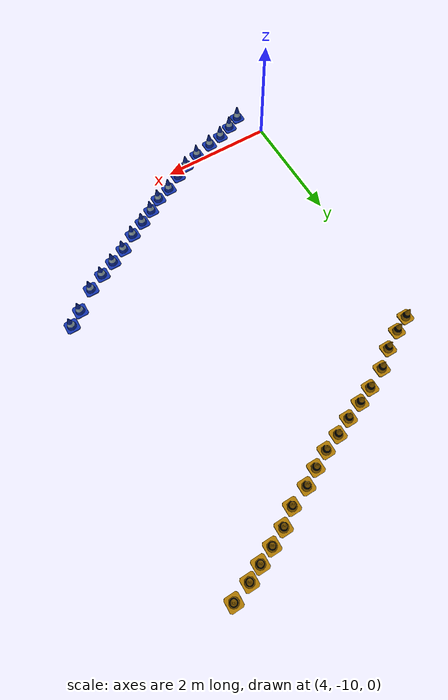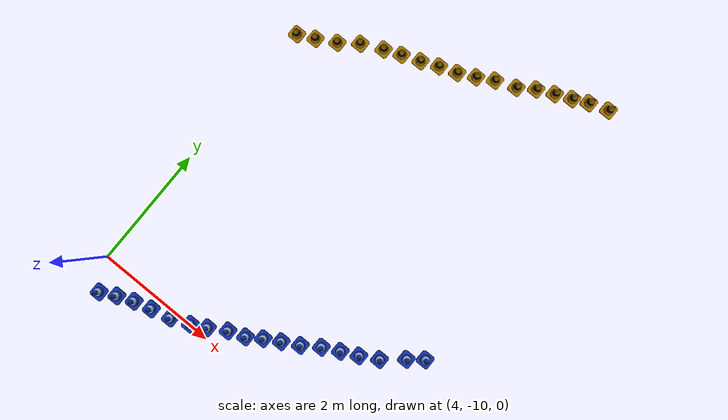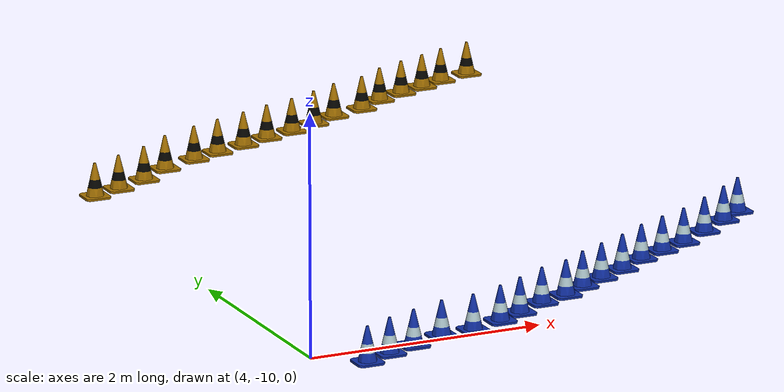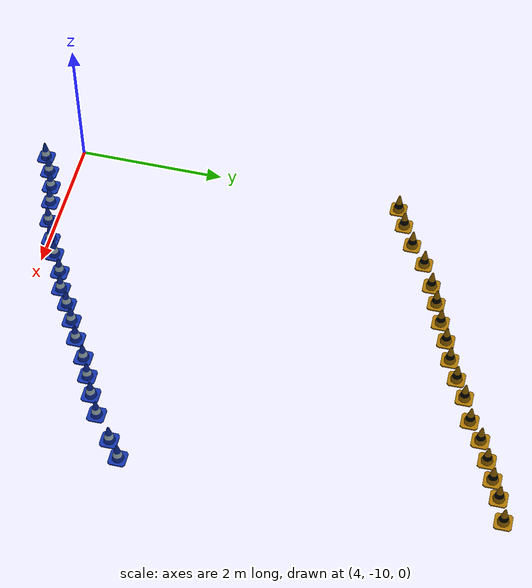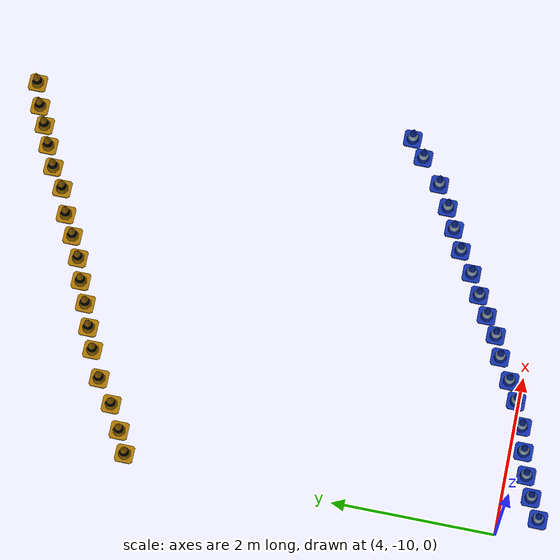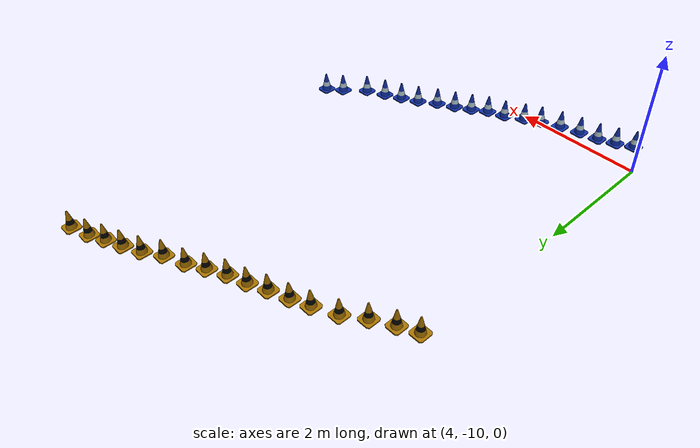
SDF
<sdf version="1.6">
 <model name="small_track">
  <link name="link_0_clone_0_clone_clone_clone_115">
   <pose>8.59347 -3.31553 0.083534 0.001019 -0.000437 -0.000128</pose>
   <visual name="visual">
    <geometry><mesh><uri>model://eufs_description/meshes/cone_yellow.dae</uri></mesh></geometry>
    <material><shader type="pixel"/></material>
   </visual>
  </link>
  <link name="link_0_clone_0_clone_clone_clone_116">
   <pose>8.28638 -3.41764 0.083534 0.001019 -0.000437 -0.000128</pose>
   <visual name="visual">
    <geometry><mesh><uri>model://eufs_description/meshes/cone_yellow.dae</uri></mesh></geometry>
    <material><shader type="pixel"/></material>
   </visual>
  </link>
  <link name="link_0_clone_0_clone_clone_clone_117">
   <pose>8.04504 -3.53155 0.083534 0.001019 -0.000437 -0.000128</pose>
   <visual name="visual">
    <geometry><mesh><uri>model://eufs_description/meshes/cone_yellow.dae</uri></mesh></geometry>
    <material><shader type="pixel"/></material>
   </visual>
  </link>
  <link name="link_0_clone_0_clone_clone_clone_118">
   <pose>7.78775 -3.64093 0.083534 0.001019 -0.000437 -0.000128</pose>
   <visual name="visual">
    <geometry><mesh><uri>model://eufs_description/meshes/cone_yellow.dae</uri></mesh></geometry>
    <material><shader type="pixel"/></material>
   </visual>
  </link>
  <link name="link_0_clone_0_clone_clone_clone_119">
   <pose>7.51732 -3.76688 0.083534 0.001019 -0.000437 -0.000128</pose>
   <visual name="visual">
    <geometry><mesh><uri>model://eufs_description/meshes/cone_yellow.dae</uri></mesh></geometry>
    <material><shader type="pixel"/></material>
   </visual>
  </link>
  <link name="link_0_clone_0_clone_clone_clone_120">
   <pose>6.93366 -4.06445 0.083534 0.001019 -0.000437 -0.000128</pose>
   <visual name="visual">
    <geometry><mesh><uri>model://eufs_description/meshes/cone_yellow.dae</uri></mesh></geometry>
    <material><shader type="pixel"/></material>
   </visual>
  </link>
  <link name="link_0_clone_0_clone_clone_clone_121">
   <pose>6.67323 -4.20938 0.083534 0.001019 -0.000437 -0.000128</pose>
   <visual name="visual">
    <geometry><mesh><uri>model://eufs_description/meshes/cone_yellow.dae</uri></mesh></geometry>
    <material><shader type="pixel"/></material>
   </visual>
  </link>
  <link name="link_0_clone_0_clone_clone_clone_122">
   <pose>6.40217 -4.34211 0.083534 0.001019 -0.000437 -0.000128</pose>
   <visual name="visual">
    <geometry><mesh><uri>model://eufs_description/meshes/cone_yellow.dae</uri></mesh></geometry>
    <material><shader type="pixel"/></material>
   </visual>
  </link>
  <link name="link_0_clone_0_clone_clone_clone_123">
   <pose>6.11772 -4.44144 0.083534 0.001019 -0.000437 -0.000128</pose>
   <visual name="visual">
    <geometry><mesh><uri>model://eufs_description/meshes/cone_yellow.dae</uri></mesh></geometry>
    <material><shader type="pixel"/></material>
   </visual>
  </link>
  <link name="link_0_clone_0_clone_clone_clone_124">
   <pose>5.8426 -4.56104 0.083534 0.001019 -0.000437 -0.000128</pose>
   <visual name="visual">
    <geometry><mesh><uri>model://eufs_description/meshes/cone_yellow.dae</uri></mesh></geometry>
    <material><shader type="pixel"/></material>
   </visual>
  </link>
  <link name="link_0_clone_0_clone_clone_clone_125">
   <pose>5.55019 -4.66911 0.083534 0.001019 -0.000437 -0.000128</pose>
   <visual name="visual">
    <geometry><mesh><uri>model://eufs_description/meshes/cone_yellow.dae</uri></mesh></geometry>
    <material><shader type="pixel"/></material>
   </visual>
  </link>
  <link name="link_0_clone_0_clone_clone_clone_126">
   <pose>5.27934 -4.78141 0.083534 0.001019 -0.000437 -0.000128</pose>
   <visual name="visual">
    <geometry><mesh><uri>model://eufs_description/meshes/cone_yellow.dae</uri></mesh></geometry>
    <material><shader type="pixel"/></material>
   </visual>
  </link>
  <link name="link_0_clone_0_clone_clone_clone_127">
   <pose>4.93985 -4.94047 0.083534 0.001019 -0.000437 -0.000128</pose>
   <visual name="visual">
    <geometry><mesh><uri>model://eufs_description/meshes/cone_yellow.dae</uri></mesh></geometry>
    <material><shader type="pixel"/></material>
   </visual>
  </link>
  <link name="link_0_clone_0_clone_clone_clone_128">
   <pose>4.34701 -5.32335 0.083534 0.001019 -0.000437 -0.000128</pose>
   <visual name="visual">
    <geometry><mesh><uri>model://eufs_description/meshes/cone_yellow.dae</uri></mesh></geometry>
    <material><shader type="pixel"/></material>
   </visual>
  </link>
  <link name="link_0_clone_0_clone_clone_clone_129">
   <pose>4.07698 -5.45046 0.083534 0.001019 -0.000437 -0.000128</pose>
   <visual name="visual">
    <geometry><mesh><uri>model://eufs_description/meshes/cone_yellow.dae</uri></mesh></geometry>
    <material><shader type="pixel"/></material>
   </visual>
  </link>
  <link name="link_0_clone_32">
   <pose>7.26282 -3.9408 0.079001 0 -0 0</pose>
   <visual name="visual">
    <geometry><mesh><uri>model://eufs_description/meshes/cone_yellow.dae</uri></mesh></geometry>
    <material><shader type="pixel"/></material>
   </visual>
  </link>
  <link name="link_0_clone_33">
   <pose>8.25363 -8.53889 0.079001 0 -0 0</pose>
   <visual name="visual">
    <geometry><mesh><uri>model://eufs_description/meshes/cone_blue.dae</uri></mesh></geometry>
    <material><shader type="pixel"/></material>
   </visual>
  </link>
  <link name="link_0_clone_34">
   <pose>4.65159 -5.15509 0.079001 0 -0 0</pose>
   <visual name="visual">
    <geometry><mesh><uri>model://eufs_description/meshes/cone_yellow.dae</uri></mesh></geometry>
    <material><shader type="pixel"/></material>
   </visual>
  </link>
  <link name="link_0_clone_35">
   <pose>5.06185 -10.1551 0.079001 0 -0 0</pose>
   <visual name="visual">
    <geometry><mesh><uri>model://eufs_description/meshes/cone_blue.dae</uri></mesh></geometry>
    <material><shader type="pixel"/></material>
   </visual>
  </link>
  <link name="link_0_clone_62_clone_207">
   <pose>8.79806 -8.10168 0.063291 -0.001555 0.00019 -5.2e-05</pose>
   <visual name="visual">
    <geometry><mesh><uri>model://eufs_description/meshes/cone_blue.dae</uri></mesh></geometry>
    <material><shader type="pixel"/></material>
   </visual>
  </link>
  <link name="link_0_clone_62_clone_208">
   <pose>8.57128 -8.2787 0.063291 -0.001555 0.00019 -5.2e-05</pose>
   <visual name="visual">
    <geometry><mesh><uri>model://eufs_description/meshes/cone_blue.dae</uri></mesh></geometry>
    <material><shader type="pixel"/></material>
   </visual>
  </link>
  <link name="link_0_clone_62_clone_209">
   <pose>7.97675 -8.69744 0.063291 -0.001555 0.00019 -5.2e-05</pose>
   <visual name="visual">
    <geometry><mesh><uri>model://eufs_description/meshes/cone_blue.dae</uri></mesh></geometry>
    <material><shader type="pixel"/></material>
   </visual>
  </link>
  <link name="link_0_clone_62_clone_210">
   <pose>7.7131 -8.82412 0.063291 -0.001555 0.00019 -5.2e-05</pose>
   <visual name="visual">
    <geometry><mesh><uri>model://eufs_description/meshes/cone_blue.dae</uri></mesh></geometry>
    <material><shader type="pixel"/></material>
   </visual>
  </link>
  <link name="link_0_clone_62_clone_211">
   <pose>7.44987 -8.95781 0.063291 -0.001555 0.00019 -5.2e-05</pose>
   <visual name="visual">
    <geometry><mesh><uri>model://eufs_description/meshes/cone_blue.dae</uri></mesh></geometry>
    <material><shader type="pixel"/></material>
   </visual>
  </link>
  <link name="link_0_clone_62_clone_212">
   <pose>7.18253 -9.14036 0.063291 -0.001555 0.00019 -5.2e-05</pose>
   <visual name="visual">
    <geometry><mesh><uri>model://eufs_description/meshes/cone_blue.dae</uri></mesh></geometry>
    <material><shader type="pixel"/></material>
   </visual>
  </link>
  <link name="link_0_clone_62_clone_213">
   <pose>6.9197 -9.28088 0.063291 -0.001555 0.00019 -5.2e-05</pose>
   <visual name="visual">
    <geometry><mesh><uri>model://eufs_description/meshes/cone_blue.dae</uri></mesh></geometry>
    <material><shader type="pixel"/></material>
   </visual>
  </link>
  <link name="link_0_clone_62_clone_214">
   <pose>6.67757 -9.42037 0.063291 -0.001555 0.00019 -5.2e-05</pose>
   <visual name="visual">
    <geometry><mesh><uri>model://eufs_description/meshes/cone_blue.dae</uri></mesh></geometry>
    <material><shader type="pixel"/></material>
   </visual>
  </link>
  <link name="link_0_clone_62_clone_215">
   <pose>6.45019 -9.57277 0.063291 -0.001555 0.00019 -5.2e-05</pose>
   <visual name="visual">
    <geometry><mesh><uri>model://eufs_description/meshes/cone_blue.dae</uri></mesh></geometry>
    <material><shader type="pixel"/></material>
   </visual>
  </link>
  <link name="link_0_clone_62_clone_216">
   <pose>6.18483 -9.67181 0.063291 -0.001555 0.00019 -5.2e-05</pose>
   <visual name="visual">
    <geometry><mesh><uri>model://eufs_description/meshes/cone_blue.dae</uri></mesh></geometry>
    <material><shader type="pixel"/></material>
   </visual>
  </link>
  <link name="link_0_clone_62_clone_217">
   <pose>5.90936 -9.83402 0.063291 -0.001555 0.00019 -5.2e-05</pose>
   <visual name="visual">
    <geometry><mesh><uri>model://eufs_description/meshes/cone_blue.dae</uri></mesh></geometry>
    <material><shader type="pixel"/></material>
   </visual>
  </link>
  <link name="link_0_clone_62_clone_218">
   <pose>5.67335 -9.95923 0.063291 -0.001555 0.00019 -5.2e-05</pose>
   <visual name="visual">
    <geometry><mesh><uri>model://eufs_description/meshes/cone_blue.dae</uri></mesh></geometry>
    <material><shader type="pixel"/></material>
   </visual>
  </link>
  <link name="link_0_clone_62_clone_219">
   <pose>5.37467 -10.081 0.063291 -0.001555 0.00019 -5.2e-05</pose>
   <visual name="visual">
    <geometry><mesh><uri>model://eufs_description/meshes/cone_blue.dae</uri></mesh></geometry>
    <material><shader type="pixel"/></material>
   </visual>
  </link>
  <link name="link_0_clone_62_clone_220">
   <pose>4.77901 -10.2364 0.063291 -0.001555 0.00019 -5.2e-05</pose>
   <visual name="visual">
    <geometry><mesh><uri>model://eufs_description/meshes/cone_blue.dae</uri></mesh></geometry>
    <material><shader type="pixel"/></material>
   </visual>
  </link>
  <link name="link_0_clone_62_clone_221">
   <pose>4.52106 -10.3419 0.063291 -0.001555 0.00019 -5.2e-05</pose>
   <visual name="visual">
    <geometry><mesh><uri>model://eufs_description/meshes/cone_blue.dae</uri></mesh></geometry>
    <material><shader type="pixel"/></material>
   </visual>
  </link>
  <link name="link_0_clone_62_clone_222">
   <pose>4.27119 -10.4678 0.063291 -0.001555 0.00019 -5.2e-05</pose>
   <visual name="visual">
    <geometry><mesh><uri>model://eufs_description/meshes/cone_blue.dae</uri></mesh></geometry>
    <material><shader type="pixel"/></material>
   </visual>
  </link>
  <static>1</static>
 </model>
</sdf>
